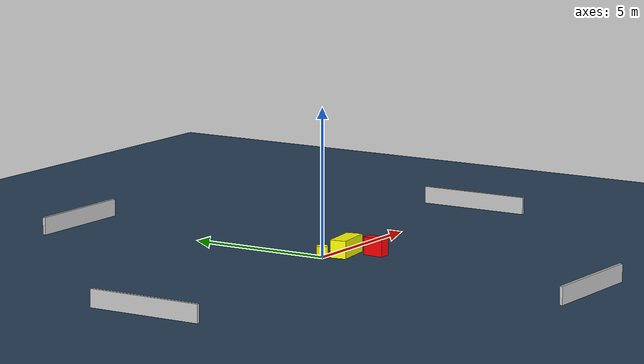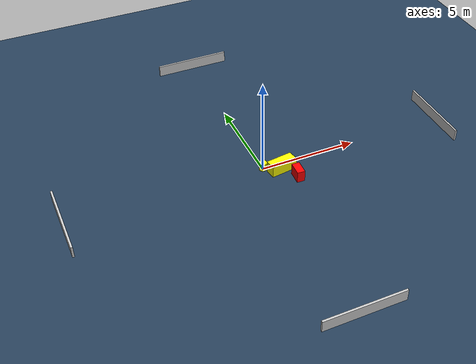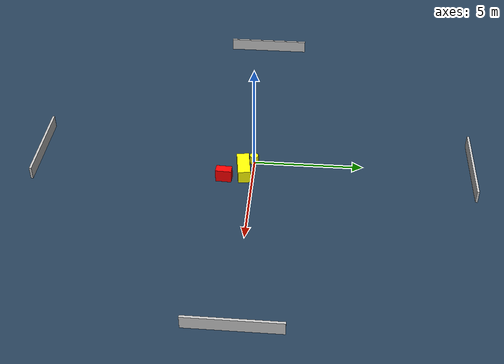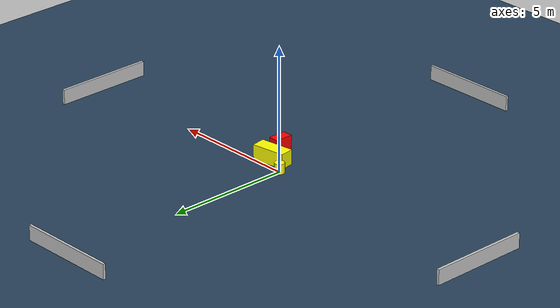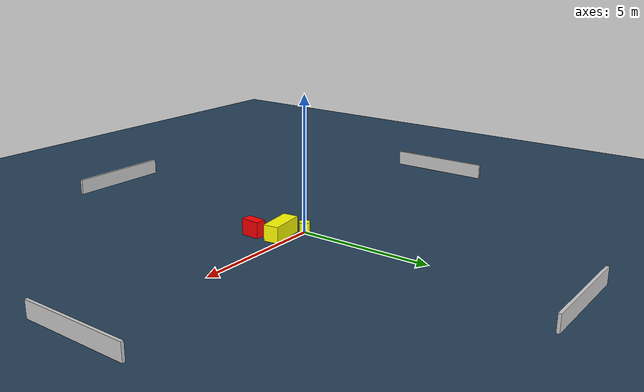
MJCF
<?xml version="1.0" ?>
<mujoco model="generated_environment">
  <option timestep="0.01" integrator="RK4" cone="elliptic"/>
  <default>
    <geom density="1"/>
  </default>
  <asset>
    <texture builtin="gradient" height="3072" name="skybox" rgb1="0.3 0.5 0.7" rgb2="0 0 0" type="skybox" width="512"/>
    <texture builtin="checker" height="300" name="groundplane" rgb1="0.2 0.3 0.4" rgb2="0.1 0.2 0.3" type="2d" width="300"/>
    <material name="groundplane" reflectance="0.2" texrepeat="5 5" texture="groundplane"/>
  </asset>
  <worldbody>
    <light dir="0 0 -1" directional="true" pos="0 0 1.5"/>
    <geom condim="3" friction="0.5 0.005 0.001" material="groundplane" name="floor" pos="0 0 0" size="0 0 0.05" type="plane"/>
    <body name="walls">
      <geom name="wall_1" condim="4" pos="-10.0 0.0 0.3" rgba="0.800000011920929 0.800000011920929 0.800000011920929 1.0" size="0.05 2.0 0.3" type="box"/>
      <geom name="wall_2" condim="4" pos="10.0 0.0 0.3" rgba="0.800000011920929 0.800000011920929 0.800000011920929 1.0" size="0.05 2.0 0.3" type="box"/>
      <geom name="wall_3" condim="4" pos="0.0 -10.0 0.3" rgba="0.800000011920929 0.800000011920929 0.800000011920929 1.0" size="2.0 0.05 0.3" type="box"/>
      <geom name="wall_4" condim="4" pos="0.0 10.0 0.3" rgba="0.800000011920929 0.800000011920929 0.800000011920929 1.0" size="2.0 0.05 0.3" type="box"/>
    </body>
    <body name="robot">
      <joint name="joint_x" type="slide" pos="0 0 0" axis="1 0 0"/>
      <joint name="joint_y" type="slide" pos="0 0 0" axis="0 1 0"/>
      <geom name="robot" type="cylinder" pos="0.0 0.0 0.2" size="0.2 0.2 0.0" mass="5.0" friction="1.0 0.005 0.0001" condim="4" rgba="1.0 1.0 0.0 1.0"/>
    </body>
    <body name="obstacle_1_movable">
      <geom name="obstacle_1_movable" condim="4" pos="0.8216884465592067 -0.4196579893869183 0.3" euler="0 0 277.8680624362465" friction="0.0 0.005 0.001" rgba="1.0 1.0 0.0 1.0" size="0.2828767613822548 0.6834821774714215 0.3" type="box" mass="0.1"/>
      <joint type="free"/>
    </body>
    <body name="obstacle_2_static">
      <geom name="obstacle_2_static" condim="4" pos="1.3077477497303864 -1.2701322721559092 0.3" euler="0 0 87.23735419323054" friction="0.0 0.005 0.001" rgba="1.0 0.0 0.0 1.0" size="0.36065529080624503 0.2004484387677632 0.3" type="box"/>
    </body>
  </worldbody>
  <actuator>
    <motor name="actuator_x" joint="joint_x" gear="1" ctrlrange="-1 1"/>
    <motor name="actuator_y" joint="joint_y" gear="1" ctrlrange="-1 1"/>
  </actuator>
</mujoco>
